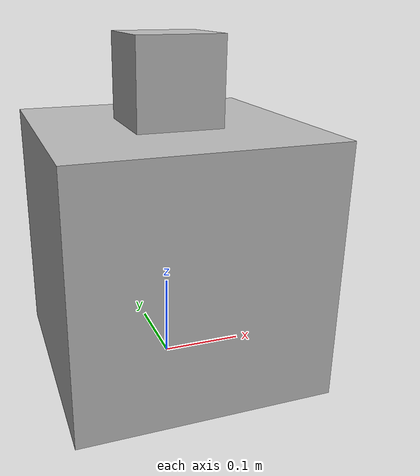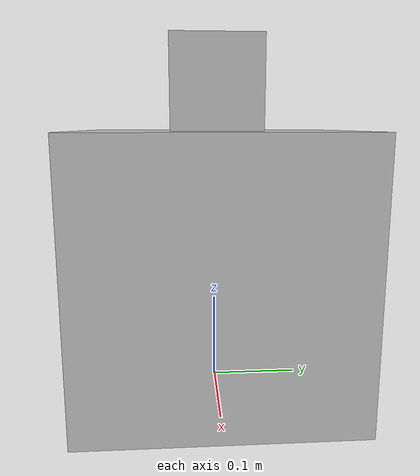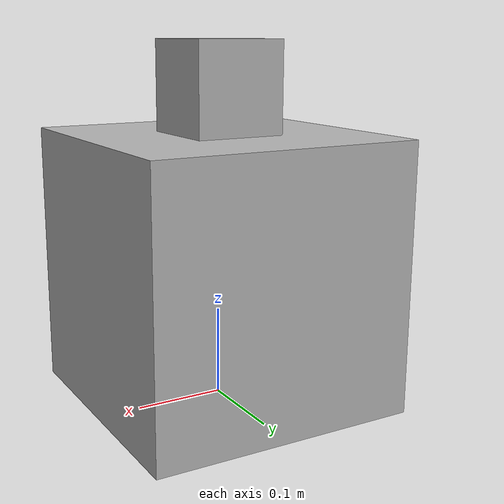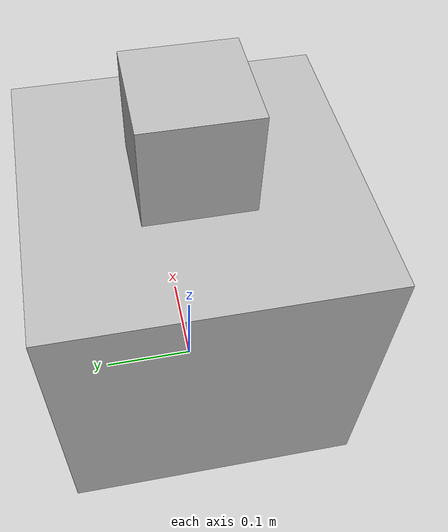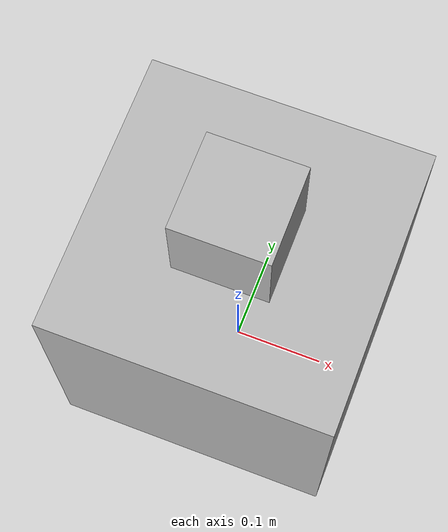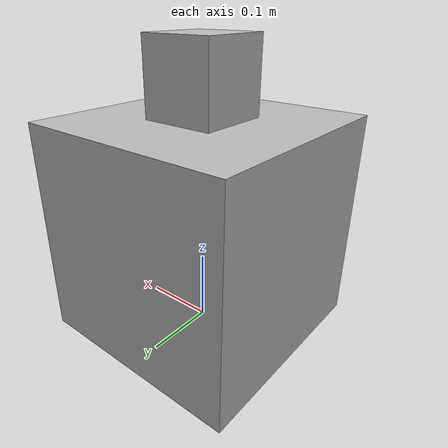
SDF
<?xml version="1.0" ?>
<sdf version="1.5">
<model name="learn_sdf">
<self_collide>1</self_collide>

	<link name="base">

		<pose> 0 0 0.15 0 0 0 </pose>

		<inertial>
			<pose> 0 0 0 0 0 0 </pose>
			<mass> 5 </mass>
			<inertia> <ixx>0.04</ixx>  <iyy>0.012</iyy>  <izz>0.04</izz>  <ixy>0</ixy> <ixz>0</ixz>  <iyz>0</iyz>  </inertia>
		</inertial>

		<visual name="base_visual">
			<pose> 0 0 0 0 0 0 </pose>
			<geometry>
				<box>
					<size> 0.3 0.3 0.3 </size>
				</box>
			</geometry>
		</visual>

		<collision name="_collision">
			<pose> 0 0 0 0 0 0 </pose>
			<geometry>
				<box>
					<size> 0.3 0.3 0.3 </size>
				</box>
			</geometry>
		</collision>

	</link>

	<link name="shoulder_1">

		<pose> 0 0 0.35 0 0 0 </pose>

		<inertial>
			<pose> 0 0 0 0 0 0 </pose>
			<mass> 1 </mass>
			<inertia> <ixx>0.04</ixx>  <iyy>0.012</iyy>  <izz>0.04</izz>  <ixy>0</ixy> <ixz>0</ixz>  <iyz>0</iyz>  </inertia>
		</inertial>

		<visual name="shoulder_1_visual">
			<pose> 0 0 0 0 0 0 </pose>
			<geometry>
				<box>
					<size> 0.1 0.1 0.1 </size>
				</box>
			</geometry>
		</visual>

		<collision name="_collision">
			<pose> 0 0 0 0 0 0 </pose>
			<geometry>
				<box>
					<size> 0.1 0.1 0.1 </size>
				</box>
			</geometry>
		</collision>

	</link>

	<joint name="shoulder_yaw" type="revolute">

		<child> shoulder_1 </child>

		<parent> base </parent>

		<axis>
			<xyz> 0 0 1 </xyz>
			<use_parent_model_frame>1</use_parent_model_frame>
			<limit>
				<upper> 6.28 </upper>
				<lower> 0.01 </lower>
			</limit>
			<dynamics>
				<damping>1</damping>
			</dynamics>
		</axis>

	</joint>

<plugin name="joint_control" filename="./libjoint_control.so">
	<position>0.2</position>
	<velocity>1</velocity>
	<p>10</p> <i>0.1</i> <d>0.01</d>
</plugin>

<static>0</static>
</model>
</sdf>
